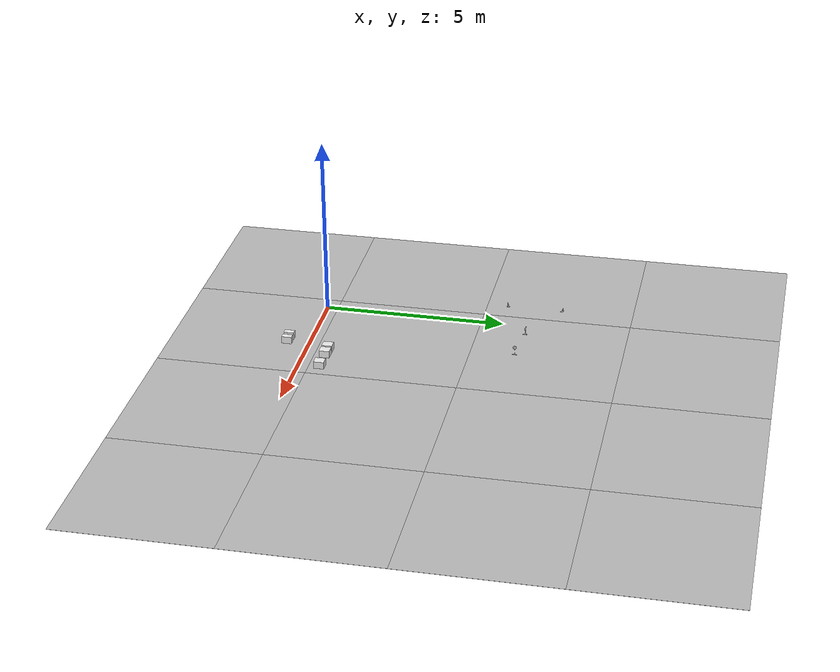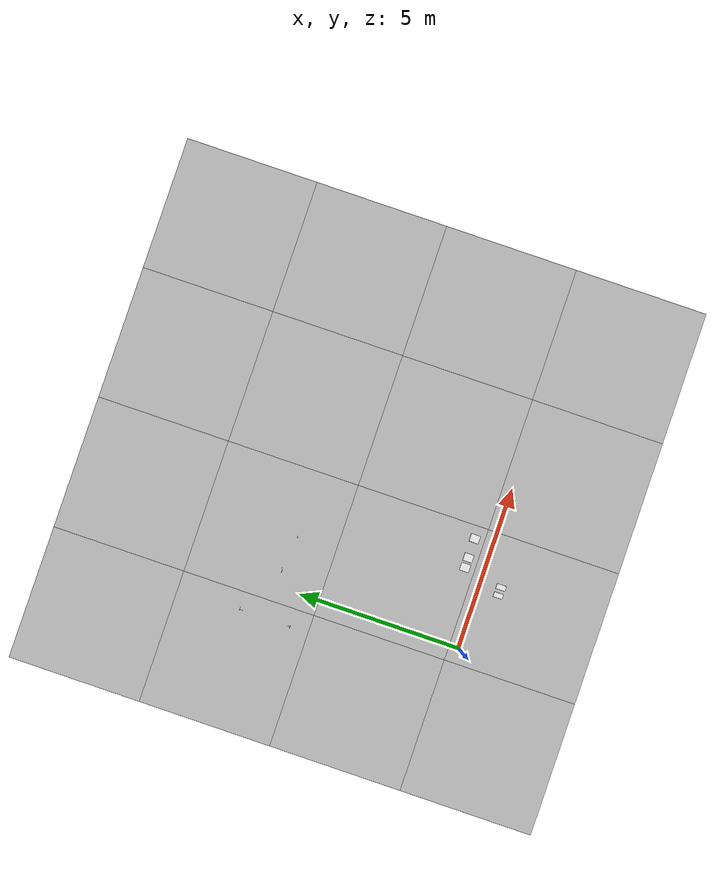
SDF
<sdf version="1.6">
 <world name="default">
  <light name="sun_light" type="directional">
   <pose>0 0 10 0 -0 0</pose>
   <diffuse>0.5 0.5 0.5 1</diffuse>
   <specular>0.1 0.1 0.1 1</specular>
   <direction>0.1 0.1 -0.9</direction>
   <attenuation>
    <range>20</range>
    <constant>0.5</constant>
    <linear>0.01</linear>
    <quadratic>0.001</quadratic>
   </attenuation>
  </light>
  <model name="Tile/0-0">
   <static>1</static>
   <link name="link">
    <collision name="collision">
     <geometry><plane><normal>0 0 1</normal><size>4.096 4.096</size></plane></geometry>
     <surface><friction><ode><mu>100</mu><mu2>50</mu2></ode></friction></surface>
    </collision>
    <visual name="visual">
     <cast_shadows>0</cast_shadows>
     <geometry><plane><normal>0 0 1</normal><size>4.096 4.096</size></plane></geometry>
     <material>
      <script>
       <uri>file://materials/scripts</uri>
       <uri>file://materials/textures</uri>
       <name>Tile/eb2720a1c06a2cf697c86169c0140e2994547e6c497f6684e54f9bef3ebd5f7b</name>
      </script>
     </material>
    </visual>
   </link>
   <pose>-2.5039999999999996 -1.7519999999999998 0 0 -0 0</pose>
  </model>
  <model name="Tile/0-1">
   <static>1</static>
   <link name="link">
    <collision name="collision">
     <geometry><plane><normal>0 0 1</normal><size>4.096 4.096</size></plane></geometry>
     <surface><friction><ode><mu>100</mu><mu2>50</mu2></ode></friction></surface>
    </collision>
    <visual name="visual">
     <cast_shadows>0</cast_shadows>
     <geometry><plane><normal>0 0 1</normal><size>4.096 4.096</size></plane></geometry>
     <material>
      <script>
       <uri>file://materials/scripts</uri>
       <uri>file://materials/textures</uri>
       <name>Tile/96a77ad3c939c8d2e2bfb426b9954740b494c649a188a8ee2f62dda9f49eacd1</name>
      </script>
     </material>
    </visual>
   </link>
   <pose>-2.5039999999999996 2.3440000000000003 0 0 -0 0</pose>
  </model>
  <model name="Tile/0-2">
   <static>1</static>
   <link name="link">
    <collision name="collision">
     <geometry><plane><normal>0 0 1</normal><size>4.096 4.096</size></plane></geometry>
     <surface><friction><ode><mu>100</mu><mu2>50</mu2></ode></friction></surface>
    </collision>
    <visual name="visual">
     <cast_shadows>0</cast_shadows>
     <geometry><plane><normal>0 0 1</normal><size>4.096 4.096</size></plane></geometry>
     <material>
      <script>
       <uri>file://materials/scripts</uri>
       <uri>file://materials/textures</uri>
       <name>Tile/af20cbc51557a0244b5f2c2002153c6a56bb15b46ced28ca7908a3fdafde4365</name>
      </script>
     </material>
    </visual>
   </link>
   <pose>-2.5039999999999996 6.44 0 0 -0 0</pose>
  </model>
  <model name="Tile/0-3">
   <static>1</static>
   <link name="link">
    <collision name="collision">
     <geometry><plane><normal>0 0 1</normal><size>4.096 4.096</size></plane></geometry>
     <surface><friction><ode><mu>100</mu><mu2>50</mu2></ode></friction></surface>
    </collision>
    <visual name="visual">
     <cast_shadows>0</cast_shadows>
     <geometry><plane><normal>0 0 1</normal><size>4.096 4.096</size></plane></geometry>
     <material>
      <script>
       <uri>file://materials/scripts</uri>
       <uri>file://materials/textures</uri>
       <name>Tile/5eab350b8220ac9944dbdfa4ac3288c7c17e24c3bf5df0dfcf6173d64dae00a1</name>
      </script>
     </material>
    </visual>
   </link>
   <pose>-2.5039999999999996 10.536000000000001 0 0 -0 0</pose>
  </model>
  <model name="Tile/1-0">
   <static>1</static>
   <link name="link">
    <collision name="collision">
     <geometry><plane><normal>0 0 1</normal><size>4.096 4.096</size></plane></geometry>
     <surface><friction><ode><mu>100</mu><mu2>50</mu2></ode></friction></surface>
    </collision>
    <visual name="visual">
     <cast_shadows>0</cast_shadows>
     <geometry><plane><normal>0 0 1</normal><size>4.096 4.096</size></plane></geometry>
     <material>
      <script>
       <uri>file://materials/scripts</uri>
       <uri>file://materials/textures</uri>
       <name>Tile/c4d847aa78957dd4566212255f7a0f3e6a78be582ed6226a2eb9c2b2a4283b31</name>
      </script>
     </material>
    </visual>
   </link>
   <pose>1.5920000000000005 -1.7519999999999998 0 0 -0 0</pose>
  </model>
  <model name="Tile/1-1">
   <static>1</static>
   <link name="link">
    <collision name="collision">
     <geometry><plane><normal>0 0 1</normal><size>4.096 4.096</size></plane></geometry>
     <surface><friction><ode><mu>100</mu><mu2>50</mu2></ode></friction></surface>
    </collision>
    <visual name="visual">
     <cast_shadows>0</cast_shadows>
     <geometry><plane><normal>0 0 1</normal><size>4.096 4.096</size></plane></geometry>
     <material>
      <script>
       <uri>file://materials/scripts</uri>
       <uri>file://materials/textures</uri>
       <name>Tile/440b29d9df7ae35030c2aceaf636022d8b6d85e8e52ce9bef4e21b2cf2f309c5</name>
      </script>
     </material>
    </visual>
   </link>
   <pose>1.5920000000000005 2.3440000000000003 0 0 -0 0</pose>
  </model>
  <model name="Tile/1-2">
   <static>1</static>
   <link name="link">
    <collision name="collision">
     <geometry><plane><normal>0 0 1</normal><size>4.096 4.096</size></plane></geometry>
     <surface><friction><ode><mu>100</mu><mu2>50</mu2></ode></friction></surface>
    </collision>
    <visual name="visual">
     <cast_shadows>0</cast_shadows>
     <geometry><plane><normal>0 0 1</normal><size>4.096 4.096</size></plane></geometry>
     <material>
      <script>
       <uri>file://materials/scripts</uri>
       <uri>file://materials/textures</uri>
       <name>Tile/08fa74547c8d401d3661d8262ecf0924c76f31f47328cd7db832b0da653aadca</name>
      </script>
     </material>
    </visual>
   </link>
   <pose>1.5920000000000005 6.44 0 0 -0 0</pose>
  </model>
  <model name="Tile/1-3">
   <static>1</static>
   <link name="link">
    <collision name="collision">
     <geometry><plane><normal>0 0 1</normal><size>4.096 4.096</size></plane></geometry>
     <surface><friction><ode><mu>100</mu><mu2>50</mu2></ode></friction></surface>
    </collision>
    <visual name="visual">
     <cast_shadows>0</cast_shadows>
     <geometry><plane><normal>0 0 1</normal><size>4.096 4.096</size></plane></geometry>
     <material>
      <script>
       <uri>file://materials/scripts</uri>
       <uri>file://materials/textures</uri>
       <name>Tile/5eab350b8220ac9944dbdfa4ac3288c7c17e24c3bf5df0dfcf6173d64dae00a1</name>
      </script>
     </material>
    </visual>
   </link>
   <pose>1.5920000000000005 10.536000000000001 0 0 -0 0</pose>
  </model>
  <model name="Tile/2-0">
   <static>1</static>
   <link name="link">
    <collision name="collision">
     <geometry><plane><normal>0 0 1</normal><size>4.096 4.096</size></plane></geometry>
     <surface><friction><ode><mu>100</mu><mu2>50</mu2></ode></friction></surface>
    </collision>
    <visual name="visual">
     <cast_shadows>0</cast_shadows>
     <geometry><plane><normal>0 0 1</normal><size>4.096 4.096</size></plane></geometry>
     <material>
      <script>
       <uri>file://materials/scripts</uri>
       <uri>file://materials/textures</uri>
       <name>Tile/691dc381635580e068100bf99b68d1ed9f70c17aea0c80b060a0012d87821872</name>
      </script>
     </material>
    </visual>
   </link>
   <pose>5.688000000000001 -1.7519999999999998 0 0 -0 0</pose>
  </model>
  <model name="Tile/2-1">
   <static>1</static>
   <link name="link">
    <collision name="collision">
     <geometry><plane><normal>0 0 1</normal><size>4.096 4.096</size></plane></geometry>
     <surface><friction><ode><mu>100</mu><mu2>50</mu2></ode></friction></surface>
    </collision>
    <visual name="visual">
     <cast_shadows>0</cast_shadows>
     <geometry><plane><normal>0 0 1</normal><size>4.096 4.096</size></plane></geometry>
     <material>
      <script>
       <uri>file://materials/scripts</uri>
       <uri>file://materials/textures</uri>
       <name>Tile/d706cb23b1028f024059c6170fbc3fe19fb176794fa341cfda1062998c41f776</name>
      </script>
     </material>
    </visual>
   </link>
   <pose>5.688000000000001 2.3440000000000003 0 0 -0 0</pose>
  </model>
  <model name="Tile/2-2">
   <static>1</static>
   <link name="link">
    <collision name="collision">
     <geometry><plane><normal>0 0 1</normal><size>4.096 4.096</size></plane></geometry>
     <surface><friction><ode><mu>100</mu><mu2>50</mu2></ode></friction></surface>
    </collision>
    <visual name="visual">
     <cast_shadows>0</cast_shadows>
     <geometry><plane><normal>0 0 1</normal><size>4.096 4.096</size></plane></geometry>
     <material>
      <script>
       <uri>file://materials/scripts</uri>
       <uri>file://materials/textures</uri>
       <name>Tile/e9be97fdb305f0501866bb07ee5f544444e779826ce93a89510f55978edbf6db</name>
      </script>
     </material>
    </visual>
   </link>
   <pose>5.688000000000001 6.44 0 0 -0 0</pose>
  </model>
  <model name="Tile/2-3">
   <static>1</static>
   <link name="link">
    <collision name="collision">
     <geometry><plane><normal>0 0 1</normal><size>4.096 4.096</size></plane></geometry>
     <surface><friction><ode><mu>100</mu><mu2>50</mu2></ode></friction></surface>
    </collision>
    <visual name="visual">
     <cast_shadows>0</cast_shadows>
     <geometry><plane><normal>0 0 1</normal><size>4.096 4.096</size></plane></geometry>
     <material>
      <script>
       <uri>file://materials/scripts</uri>
       <uri>file://materials/textures</uri>
       <name>Tile/5eab350b8220ac9944dbdfa4ac3288c7c17e24c3bf5df0dfcf6173d64dae00a1</name>
      </script>
     </material>
    </visual>
   </link>
   <pose>5.688000000000001 10.536000000000001 0 0 -0 0</pose>
  </model>
  <model name="Tile/3-0">
   <static>1</static>
   <link name="link">
    <collision name="collision">
     <geometry><plane><normal>0 0 1</normal><size>4.096 4.096</size></plane></geometry>
     <surface><friction><ode><mu>100</mu><mu2>50</mu2></ode></friction></surface>
    </collision>
    <visual name="visual">
     <cast_shadows>0</cast_shadows>
     <geometry><plane><normal>0 0 1</normal><size>4.096 4.096</size></plane></geometry>
     <material>
      <script>
       <uri>file://materials/scripts</uri>
       <uri>file://materials/textures</uri>
       <name>Tile/5eab350b8220ac9944dbdfa4ac3288c7c17e24c3bf5df0dfcf6173d64dae00a1</name>
      </script>
     </material>
    </visual>
   </link>
   <pose>9.784 -1.7519999999999998 0 0 -0 0</pose>
  </model>
  <model name="Tile/3-1">
   <static>1</static>
   <link name="link">
    <collision name="collision">
     <geometry><plane><normal>0 0 1</normal><size>4.096 4.096</size></plane></geometry>
     <surface><friction><ode><mu>100</mu><mu2>50</mu2></ode></friction></surface>
    </collision>
    <visual name="visual">
     <cast_shadows>0</cast_shadows>
     <geometry><plane><normal>0 0 1</normal><size>4.096 4.096</size></plane></geometry>
     <material>
      <script>
       <uri>file://materials/scripts</uri>
       <uri>file://materials/textures</uri>
       <name>Tile/afe186d9a084b07d850b0ac933ea92be350a55f23bff8a590ab2408287604481</name>
      </script>
     </material>
    </visual>
   </link>
   <pose>9.784 2.3440000000000003 0 0 -0 0</pose>
  </model>
  <model name="Tile/3-2">
   <static>1</static>
   <link name="link">
    <collision name="collision">
     <geometry><plane><normal>0 0 1</normal><size>4.096 4.096</size></plane></geometry>
     <surface><friction><ode><mu>100</mu><mu2>50</mu2></ode></friction></surface>
    </collision>
    <visual name="visual">
     <cast_shadows>0</cast_shadows>
     <geometry><plane><normal>0 0 1</normal><size>4.096 4.096</size></plane></geometry>
     <material>
      <script>
       <uri>file://materials/scripts</uri>
       <uri>file://materials/textures</uri>
       <name>Tile/5eab350b8220ac9944dbdfa4ac3288c7c17e24c3bf5df0dfcf6173d64dae00a1</name>
      </script>
     </material>
    </visual>
   </link>
   <pose>9.784 6.44 0 0 -0 0</pose>
  </model>
  <model name="Tile/3-3">
   <static>1</static>
   <link name="link">
    <collision name="collision">
     <geometry><plane><normal>0 0 1</normal><size>4.096 4.096</size></plane></geometry>
     <surface><friction><ode><mu>100</mu><mu2>50</mu2></ode></friction></surface>
    </collision>
    <visual name="visual">
     <cast_shadows>0</cast_shadows>
     <geometry><plane><normal>0 0 1</normal><size>4.096 4.096</size></plane></geometry>
     <material>
      <script>
       <uri>file://materials/scripts</uri>
       <uri>file://materials/textures</uri>
       <name>Tile/5eab350b8220ac9944dbdfa4ac3288c7c17e24c3bf5df0dfcf6173d64dae00a1</name>
      </script>
     </material>
    </visual>
   </link>
   <pose>9.784 10.536000000000001 0 0 -0 0</pose>
  </model>
  <model name="Obstacle/-11/0">
   <pose>2.3480000000000003 0.6000000000000001 0.1 0 0 -0.0</pose>
   <link name="link">
    <inertial>
     <mass>10</mass>
     <inertia>
      <ixx>0.166667</ixx>
      <ixy>0</ixy>
      <ixz>0</ixz>
      <iyy>0.166667</iyy>
      <iyz>0</iyz>
      <izz>0.166667</izz>
     </inertia>
    </inertial>
    <collision name="collision">
     <geometry><box><size>0.24000000000000005 0.27999999999999997 0.2</size></box></geometry>
    </collision>
    <visual name="visual">
     <geometry><box><size>0.24000000000000005 0.27999999999999997 0.2</size></box></geometry>
     <material>
      <script><name>Gazebo/White</name><uri>file://media/materials/scripts/gazebo.material</uri></script>
     </material>
    </visual>
   </link>
  </model>
  <model name="Obstacle/-13/0">
   <pose>2.648 0.6000000000000001 0.1 0 0 -0.0</pose>
   <link name="link">
    <inertial>
     <mass>10</mass>
     <inertia>
      <ixx>0.166667</ixx>
      <ixy>0</ixy>
      <ixz>0</ixz>
      <iyy>0.166667</iyy>
      <iyz>0</iyz>
      <izz>0.166667</izz>
     </inertia>
    </inertial>
    <collision name="collision">
     <geometry><box><size>0.24000000000000005 0.27999999999999997 0.2</size></box></geometry>
    </collision>
    <visual name="visual">
     <geometry><box><size>0.24000000000000005 0.27999999999999997 0.2</size></box></geometry>
     <material>
      <script><name>Gazebo/White</name><uri>file://media/materials/scripts/gazebo.material</uri></script>
     </material>
    </visual>
   </link>
  </model>
  <model name="Obstacle/-16/0">
   <pose>3.248 0.6000000000000001 0.1 0 0 -0.0</pose>
   <link name="link">
    <inertial>
     <mass>10</mass>
     <inertia>
      <ixx>0.166667</ixx>
      <ixy>0</ixy>
      <ixz>0</ixz>
      <iyy>0.166667</iyy>
      <iyz>0</iyz>
      <izz>0.166667</izz>
     </inertia>
    </inertial>
    <collision name="collision">
     <geometry><box><size>0.24000000000000005 0.27999999999999997 0.2</size></box></geometry>
    </collision>
    <visual name="visual">
     <geometry><box><size>0.24000000000000005 0.27999999999999997 0.2</size></box></geometry>
     <material>
      <script><name>Gazebo/White</name><uri>file://media/materials/scripts/gazebo.material</uri></script>
     </material>
    </visual>
   </link>
  </model>
  <model name="Obstacle/-18/0">
   <pose>1.8752908579756684 -0.6000000000000001 0.1 0 0 -0.0</pose>
   <link name="link">
    <inertial>
     <mass>10</mass>
     <inertia>
      <ixx>0.166667</ixx>
      <ixy>0</ixy>
      <ixz>0</ixz>
      <iyy>0.166667</iyy>
      <iyz>0</iyz>
      <izz>0.166667</izz>
     </inertia>
    </inertial>
    <collision name="collision">
     <geometry><box><size>0.1545817159513369 0.27999999999999997 0.2</size></box></geometry>
    </collision>
    <visual name="visual">
     <geometry><box><size>0.1545817159513369 0.27999999999999997 0.2</size></box></geometry>
     <material>
      <script><name>Gazebo/White</name><uri>file://media/materials/scripts/gazebo.material</uri></script>
     </material>
    </visual>
   </link>
  </model>
  <model name="Obstacle/-19/0">
   <pose>2.1298725739270052 -0.6000000000000001 0.1 0 0 -0.0</pose>
   <link name="link">
    <inertial>
     <mass>10</mass>
     <inertia>
      <ixx>0.166667</ixx>
      <ixy>0</ixy>
      <ixz>0</ixz>
      <iyy>0.166667</iyy>
      <iyz>0</iyz>
      <izz>0.166667</izz>
     </inertia>
    </inertial>
    <collision name="collision">
     <geometry><box><size>0.1545817159513369 0.27999999999999997 0.2</size></box></geometry>
    </collision>
    <visual name="visual">
     <geometry><box><size>0.1545817159513369 0.27999999999999997 0.2</size></box></geometry>
     <material>
      <script><name>Gazebo/White</name><uri>file://media/materials/scripts/gazebo.material</uri></script>
     </material>
    </visual>
   </link>
  </model>
  <model name="Sign-Sign/-41">
   <link name="link">
    <visual name="visual">
     <geometry><mesh><uri>file://meshes/Rechts_abbiegen.dae</uri><scale>0.001 0.001 0.001</scale></mesh></geometry>
    </visual>
    <collision name="collision">
     <pose>-0.055 0 0.145 0 0 0</pose>
     <geometry><box><size>0.11 0.15 0.29</size></box></geometry>
    </collision>
   </link>
   <pose>1.6479999999999997 5.6 0.0 0 0 6.283185307179586</pose>
  </model>
  <model name="Sign-Sign/-44">
   <link name="link">
    <visual name="visual">
     <geometry><mesh><uri>file://meshes/Links_abbiegen.dae</uri><scale>0.001 0.001 0.001</scale></mesh></geometry>
    </visual>
    <collision name="collision">
     <pose>-0.055 0 0.145 0 0 0</pose>
     <geometry><box><size>0.11 0.15 0.29</size></box></geometry>
    </collision>
   </link>
   <pose>0.4979999999999997 5.75 0.0 0 0 1.5707963267948966</pose>
  </model>
  <model name="Sign-Sign/-59">
   <link name="link">
    <visual name="visual">
     <geometry>
      <mesh><uri>file://meshes/VorbeifahrtRechts_pedestrian.dae</uri><scale>0.001 0.001 0.001</scale></mesh>
     </geometry>
    </visual>
    <collision name="collision">
     <pose>-0.055 0 0.075 0 0 0</pose>
     <geometry><box><size>0.11 0.15 0.15</size></box></geometry>
    </collision>
   </link>
   <pose>-1.0020000000000002 6.55 0.0 0 0 -3.141592653589793</pose>
  </model>
  <model name="Sign-Sign/-60">
   <link name="link">
    <visual name="visual">
     <geometry>
      <mesh><uri>file://meshes/VorbeifahrtRechts_pedestrian.dae</uri><scale>0.001 0.001 0.001</scale></mesh>
     </geometry>
    </visual>
    <collision name="collision">
     <pose>-0.055 0 0.075 0 0 0</pose>
     <geometry><box><size>0.11 0.15 0.15</size></box></geometry>
    </collision>
   </link>
   <pose>-1.002 4.95 0.0 0 0 0.0</pose>
  </model>
 </world>
</sdf>
